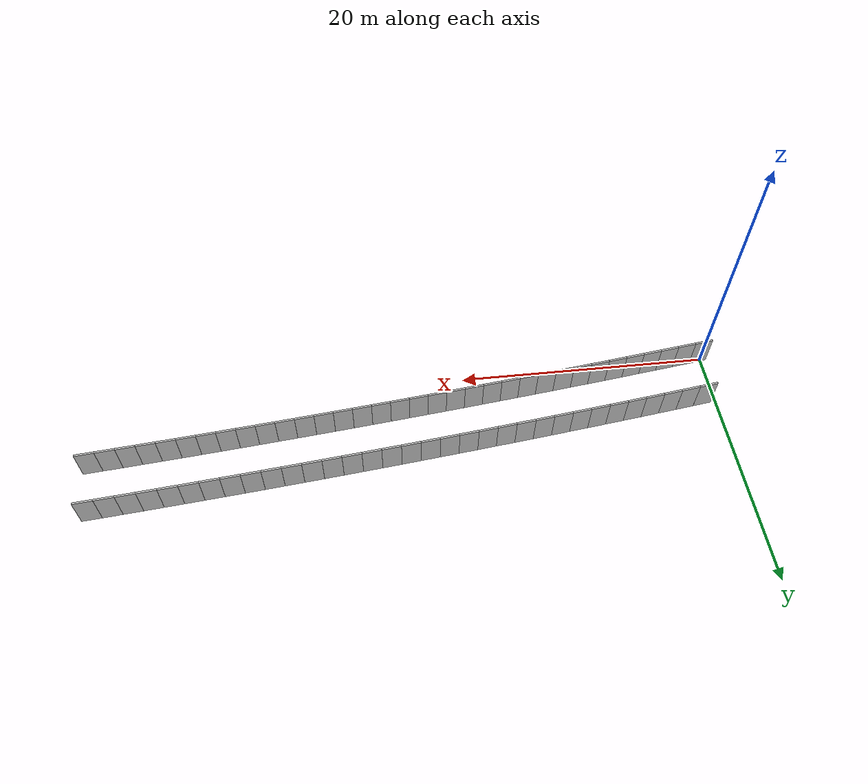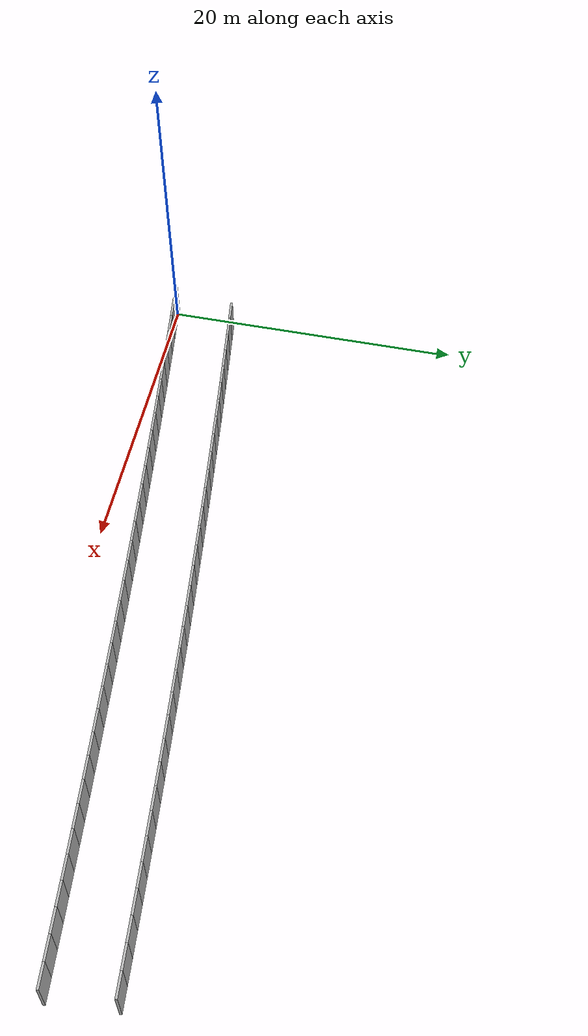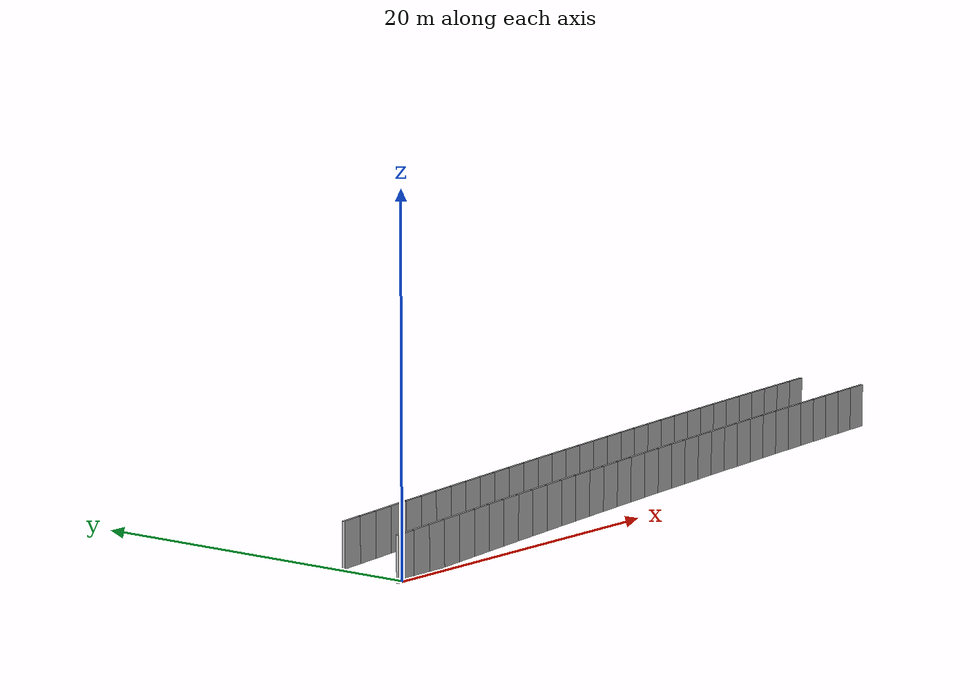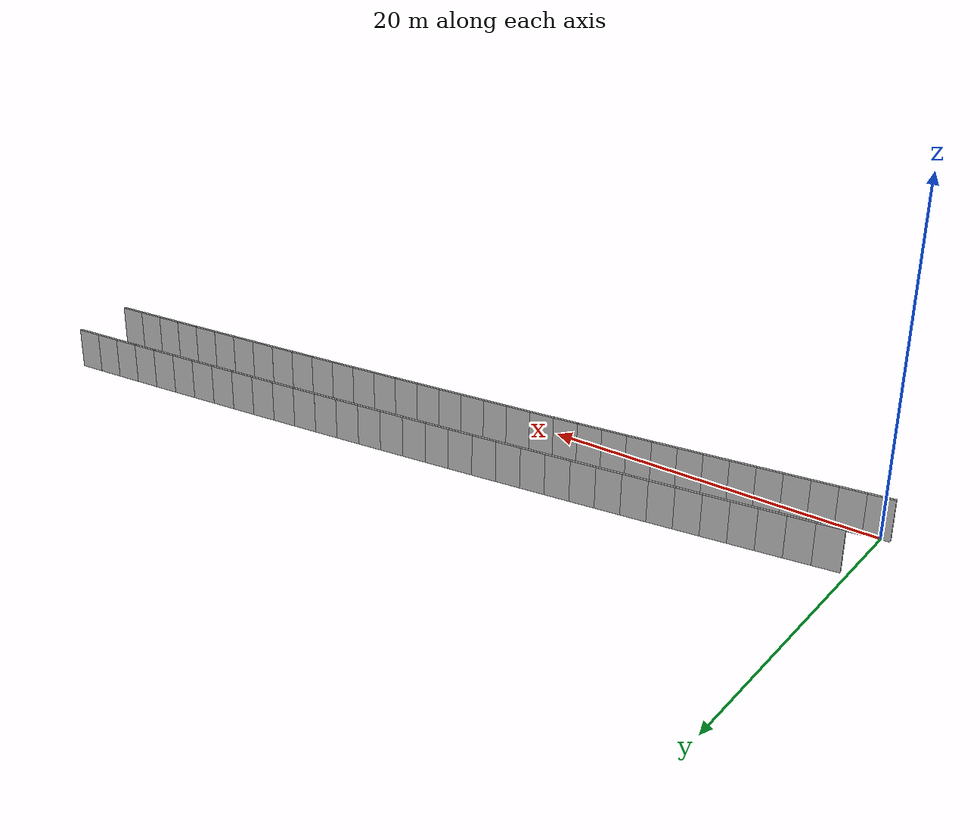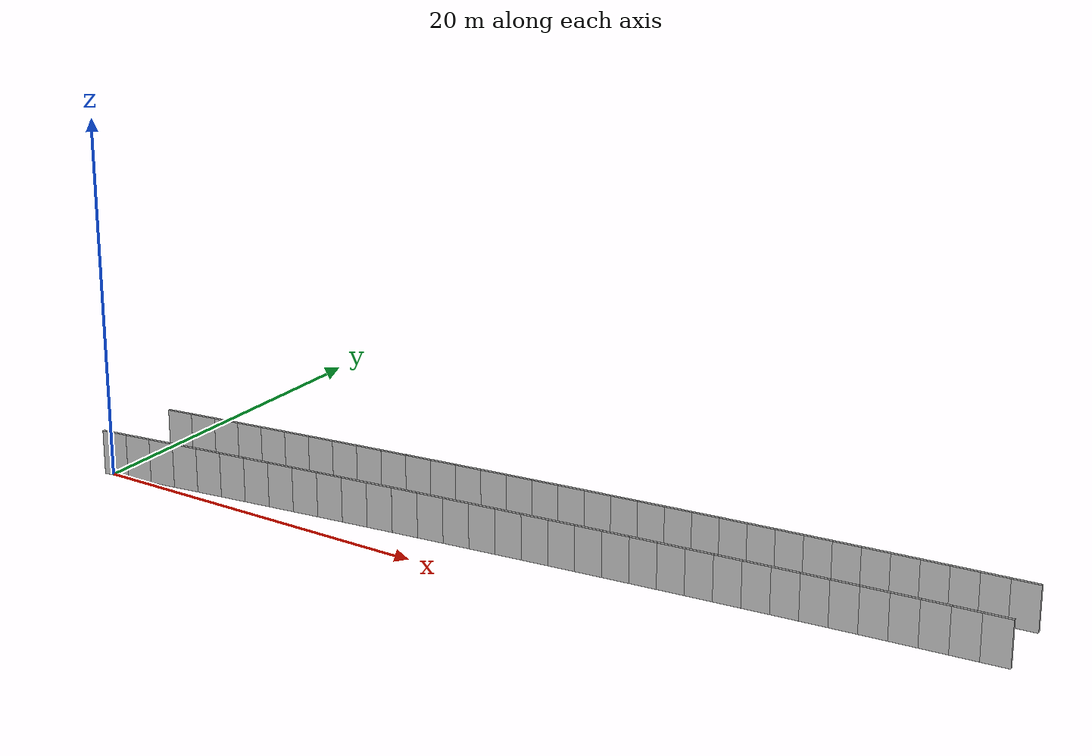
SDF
<?xml version="1.0" ?>
<sdf version="1.6">
  <model name="sps_2147">
    <pose frame="">0 0 0 0 -0 0</pose>
    <static>1</static>
    <self_collide>0</self_collide>
    <allow_auto_disable>0</allow_auto_disable>
    <link name="Wall2919">
      <kinematic>0</kinematic>
      <gravity>1</gravity>
      <self_collide>0</self_collide>
      <collision name="collision">
        <geometry>
          <box>
            <size>1.49658 0.15 2.5</size>
          </box>
        </geometry>
        <pose frame="">0 0 0 0 -0 0</pose>
      </collision>
      <visual name="visual">
        <geometry>
          <box>
            <size>1.49658 0.15 2.5</size>
          </box>
        </geometry>
        <pose frame="">0 0 0 0 -0 0</pose>
        <cast_shadows>1</cast_shadows>
        <transparency>0.0</transparency>
      </visual>
      <pose frame="">49.3093 5.65028 1.25 0 0 -3.05355</pose>
    </link>
    <link name="Wall2920">
      <kinematic>0</kinematic>
      <gravity>1</gravity>
      <self_collide>0</self_collide>
      <collision name="collision">
        <geometry>
          <box>
            <size>1.49641 0.15 2.5</size>
          </box>
        </geometry>
        <pose frame="">0 0 0 0 -0 0</pose>
      </collision>
      <visual name="visual">
        <geometry>
          <box>
            <size>1.49641 0.15 2.5</size>
          </box>
        </geometry>
        <pose frame="">0 0 0 0 -0 0</pose>
        <cast_shadows>1</cast_shadows>
        <transparency>0.0</transparency>
      </visual>
      <pose frame="">47.8187 5.51759 1.25 0 0 -3.05207</pose>
    </link>
    <link name="Wall2921">
      <kinematic>0</kinematic>
      <gravity>1</gravity>
      <self_collide>0</self_collide>
      <collision name="collision">
        <geometry>
          <box>
            <size>1.49665 0.15 2.5</size>
          </box>
        </geometry>
        <pose frame="">0 0 0 0 -0 0</pose>
      </collision>
      <visual name="visual">
        <geometry>
          <box>
            <size>1.49665 0.15 2.5</size>
          </box>
        </geometry>
        <pose frame="">0 0 0 0 -0 0</pose>
        <cast_shadows>1</cast_shadows>
        <transparency>0.0</transparency>
      </visual>
      <pose frame="">46.3282 5.38249 1.25 0 0 -3.05032</pose>
    </link>
    <link name="Wall2922">
      <kinematic>0</kinematic>
      <gravity>1</gravity>
      <self_collide>0</self_collide>
      <collision name="collision">
        <geometry>
          <box>
            <size>1.49644 0.15 2.5</size>
          </box>
        </geometry>
        <pose frame="">0 0 0 0 -0 0</pose>
      </collision>
      <visual name="visual">
        <geometry>
          <box>
            <size>1.49644 0.15 2.5</size>
          </box>
        </geometry>
        <pose frame="">0 0 0 0 -0 0</pose>
        <cast_shadows>1</cast_shadows>
        <transparency>0.0</transparency>
      </visual>
      <pose frame="">44.838 5.24489 1.25 0 0 -3.04871</pose>
    </link>
    <link name="Wall2923">
      <kinematic>0</kinematic>
      <gravity>1</gravity>
      <self_collide>0</self_collide>
      <collision name="collision">
        <geometry>
          <box>
            <size>1.49646 0.15 2.5</size>
          </box>
        </geometry>
        <pose frame="">0 0 0 0 -0 0</pose>
      </collision>
      <visual name="visual">
        <geometry>
          <box>
            <size>1.49646 0.15 2.5</size>
          </box>
        </geometry>
        <pose frame="">0 0 0 0 -0 0</pose>
        <cast_shadows>1</cast_shadows>
        <transparency>0.0</transparency>
      </visual>
      <pose frame="">43.3481 5.10499 1.25 0 0 -3.04724</pose>
    </link>
    <link name="Wall2924">
      <kinematic>0</kinematic>
      <gravity>1</gravity>
      <self_collide>0</self_collide>
      <collision name="collision">
        <geometry>
          <box>
            <size>1.49647 0.15 2.5</size>
          </box>
        </geometry>
        <pose frame="">0 0 0 0 -0 0</pose>
      </collision>
      <visual name="visual">
        <geometry>
          <box>
            <size>1.49647 0.15 2.5</size>
          </box>
        </geometry>
        <pose frame="">0 0 0 0 -0 0</pose>
        <cast_shadows>1</cast_shadows>
        <transparency>0.0</transparency>
      </visual>
      <pose frame="">41.8585 4.96269 1.25 0 0 -3.04548</pose>
    </link>
    <link name="Wall2925">
      <kinematic>0</kinematic>
      <gravity>1</gravity>
      <self_collide>0</self_collide>
      <collision name="collision">
        <geometry>
          <box>
            <size>1.49656 0.15 2.5</size>
          </box>
        </geometry>
        <pose frame="">0 0 0 0 -0 0</pose>
      </collision>
      <visual name="visual">
        <geometry>
          <box>
            <size>1.49656 0.15 2.5</size>
          </box>
        </geometry>
        <pose frame="">0 0 0 0 -0 0</pose>
        <cast_shadows>1</cast_shadows>
        <transparency>0.0</transparency>
      </visual>
      <pose frame="">40.3689 4.81798 1.25 0 0 -3.04401</pose>
    </link>
    <link name="Wall2926">
      <kinematic>0</kinematic>
      <gravity>1</gravity>
      <self_collide>0</self_collide>
      <collision name="collision">
        <geometry>
          <box>
            <size>1.49653 0.15 2.5</size>
          </box>
        </geometry>
        <pose frame="">0 0 0 0 -0 0</pose>
      </collision>
      <visual name="visual">
        <geometry>
          <box>
            <size>1.49653 0.15 2.5</size>
          </box>
        </geometry>
        <pose frame="">0 0 0 0 -0 0</pose>
        <cast_shadows>1</cast_shadows>
        <transparency>0.0</transparency>
      </visual>
      <pose frame="">38.8796 4.6711 1.25 0 0 -3.04257</pose>
    </link>
    <link name="Wall2927">
      <kinematic>0</kinematic>
      <gravity>1</gravity>
      <self_collide>0</self_collide>
      <collision name="collision">
        <geometry>
          <box>
            <size>1.49635 0.15 2.5</size>
          </box>
        </geometry>
        <pose frame="">0 0 0 0 -0 0</pose>
      </collision>
      <visual name="visual">
        <geometry>
          <box>
            <size>1.49635 0.15 2.5</size>
          </box>
        </geometry>
        <pose frame="">0 0 0 0 -0 0</pose>
        <cast_shadows>1</cast_shadows>
        <transparency>0.0</transparency>
      </visual>
      <pose frame="">37.3906 4.5219 1.25 0 0 -3.04088</pose>
    </link>
    <link name="Wall2928">
      <kinematic>0</kinematic>
      <gravity>1</gravity>
      <self_collide>0</self_collide>
      <collision name="collision">
        <geometry>
          <box>
            <size>1.49665 0.15 2.5</size>
          </box>
        </geometry>
        <pose frame="">0 0 0 0 -0 0</pose>
      </collision>
      <visual name="visual">
        <geometry>
          <box>
            <size>1.49665 0.15 2.5</size>
          </box>
        </geometry>
        <pose frame="">0 0 0 0 -0 0</pose>
        <cast_shadows>1</cast_shadows>
        <transparency>0.0</transparency>
      </visual>
      <pose frame="">35.9018 4.37028 1.25 0 0 -3.03934</pose>
    </link>
    <link name="Wall2929">
      <kinematic>0</kinematic>
      <gravity>1</gravity>
      <self_collide>0</self_collide>
      <collision name="collision">
        <geometry>
          <box>
            <size>1.49647 0.15 2.5</size>
          </box>
        </geometry>
        <pose frame="">0 0 0 0 -0 0</pose>
      </collision>
      <visual name="visual">
        <geometry>
          <box>
            <size>1.49647 0.15 2.5</size>
          </box>
        </geometry>
        <pose frame="">0 0 0 0 -0 0</pose>
        <cast_shadows>1</cast_shadows>
        <transparency>0.0</transparency>
      </visual>
      <pose frame="">34.4132 4.21629 1.25 0 0 -3.03769</pose>
    </link>
    <link name="Wall2930">
      <kinematic>0</kinematic>
      <gravity>1</gravity>
      <self_collide>0</self_collide>
      <collision name="collision">
        <geometry>
          <box>
            <size>1.49648 0.15 2.5</size>
          </box>
        </geometry>
        <pose frame="">0 0 0 0 -0 0</pose>
      </collision>
      <visual name="visual">
        <geometry>
          <box>
            <size>1.49648 0.15 2.5</size>
          </box>
        </geometry>
        <pose frame="">0 0 0 0 -0 0</pose>
        <cast_shadows>1</cast_shadows>
        <transparency>0.0</transparency>
      </visual>
      <pose frame="">32.9249 4.05989 1.25 0 0 -3.03609</pose>
    </link>
    <link name="Wall2931">
      <kinematic>0</kinematic>
      <gravity>1</gravity>
      <self_collide>0</self_collide>
      <collision name="collision">
        <geometry>
          <box>
            <size>1.49637 0.15 2.5</size>
          </box>
        </geometry>
        <pose frame="">0 0 0 0 -0 0</pose>
      </collision>
      <visual name="visual">
        <geometry>
          <box>
            <size>1.49637 0.15 2.5</size>
          </box>
        </geometry>
        <pose frame="">0 0 0 0 -0 0</pose>
        <cast_shadows>1</cast_shadows>
        <transparency>0.0</transparency>
      </visual>
      <pose frame="">31.437 3.90111 1.25 0 0 -3.03448</pose>
    </link>
    <link name="Wall2932">
      <kinematic>0</kinematic>
      <gravity>1</gravity>
      <self_collide>0</self_collide>
      <collision name="collision">
        <geometry>
          <box>
            <size>1.49661 0.15 2.5</size>
          </box>
        </geometry>
        <pose frame="">0 0 0 0 -0 0</pose>
      </collision>
      <visual name="visual">
        <geometry>
          <box>
            <size>1.49661 0.15 2.5</size>
          </box>
        </geometry>
        <pose frame="">0 0 0 0 -0 0</pose>
        <cast_shadows>1</cast_shadows>
        <transparency>0.0</transparency>
      </visual>
      <pose frame="">29.9492 3.74 1.25 0 0 -3.03298</pose>
    </link>
    <link name="Wall2933">
      <kinematic>0</kinematic>
      <gravity>1</gravity>
      <self_collide>0</self_collide>
      <collision name="collision">
        <geometry>
          <box>
            <size>1.49651 0.15 2.5</size>
          </box>
        </geometry>
        <pose frame="">0 0 0 0 -0 0</pose>
      </collision>
      <visual name="visual">
        <geometry>
          <box>
            <size>1.49651 0.15 2.5</size>
          </box>
        </geometry>
        <pose frame="">0 0 0 0 -0 0</pose>
        <cast_shadows>1</cast_shadows>
        <transparency>0.0</transparency>
      </visual>
      <pose frame="">28.4616 3.57658 1.25 0 0 -3.03137</pose>
    </link>
    <link name="Wall2934">
      <kinematic>0</kinematic>
      <gravity>1</gravity>
      <self_collide>0</self_collide>
      <collision name="collision">
        <geometry>
          <box>
            <size>1.49635 0.15 2.5</size>
          </box>
        </geometry>
        <pose frame="">0 0 0 0 -0 0</pose>
      </collision>
      <visual name="visual">
        <geometry>
          <box>
            <size>1.49635 0.15 2.5</size>
          </box>
        </geometry>
        <pose frame="">0 0 0 0 -0 0</pose>
        <cast_shadows>1</cast_shadows>
        <transparency>0.0</transparency>
      </visual>
      <pose frame="">26.9744 3.41078 1.25 0 0 -3.02976</pose>
    </link>
    <link name="Wall2935">
      <kinematic>0</kinematic>
      <gravity>1</gravity>
      <self_collide>0</self_collide>
      <collision name="collision">
        <geometry>
          <box>
            <size>1.49664 0.15 2.5</size>
          </box>
        </geometry>
        <pose frame="">0 0 0 0 -0 0</pose>
      </collision>
      <visual name="visual">
        <geometry>
          <box>
            <size>1.49664 0.15 2.5</size>
          </box>
        </geometry>
        <pose frame="">0 0 0 0 -0 0</pose>
        <cast_shadows>1</cast_shadows>
        <transparency>0.0</transparency>
      </visual>
      <pose frame="">25.4874 3.24248 1.25 0 0 -3.02802</pose>
    </link>
    <link name="Wall2936">
      <kinematic>0</kinematic>
      <gravity>1</gravity>
      <self_collide>0</self_collide>
      <collision name="collision">
        <geometry>
          <box>
            <size>1.49644 0.15 2.5</size>
          </box>
        </geometry>
        <pose frame="">0 0 0 0 -0 0</pose>
      </collision>
      <visual name="visual">
        <geometry>
          <box>
            <size>1.49644 0.15 2.5</size>
          </box>
        </geometry>
        <pose frame="">0 0 0 0 -0 0</pose>
        <cast_shadows>1</cast_shadows>
        <transparency>0.0</transparency>
      </visual>
      <pose frame="">24.0006 3.07188 1.25 0 0 -3.02669</pose>
    </link>
    <link name="Wall2937">
      <kinematic>0</kinematic>
      <gravity>1</gravity>
      <self_collide>0</self_collide>
      <collision name="collision">
        <geometry>
          <box>
            <size>1.49662 0.15 2.5</size>
          </box>
        </geometry>
        <pose frame="">0 0 0 0 -0 0</pose>
      </collision>
      <visual name="visual">
        <geometry>
          <box>
            <size>1.49662 0.15 2.5</size>
          </box>
        </geometry>
        <pose frame="">0 0 0 0 -0 0</pose>
        <cast_shadows>1</cast_shadows>
        <transparency>0.0</transparency>
      </visual>
      <pose frame="">22.5141 2.899 1.25 0 0 -3.02494</pose>
    </link>
    <link name="Wall2938">
      <kinematic>0</kinematic>
      <gravity>1</gravity>
      <self_collide>0</self_collide>
      <collision name="collision">
        <geometry>
          <box>
            <size>1.49639 0.15 2.5</size>
          </box>
        </geometry>
        <pose frame="">0 0 0 0 -0 0</pose>
      </collision>
      <visual name="visual">
        <geometry>
          <box>
            <size>1.49639 0.15 2.5</size>
          </box>
        </geometry>
        <pose frame="">0 0 0 0 -0 0</pose>
        <cast_shadows>1</cast_shadows>
        <transparency>0.0</transparency>
      </visual>
      <pose frame="">21.0279 2.72371 1.25 0 0 -3.02344</pose>
    </link>
    <link name="Wall2939">
      <kinematic>0</kinematic>
      <gravity>1</gravity>
      <self_collide>0</self_collide>
      <collision name="collision">
        <geometry>
          <box>
            <size>1.49656 0.15 2.5</size>
          </box>
        </geometry>
        <pose frame="">0 0 0 0 -0 0</pose>
      </collision>
      <visual name="visual">
        <geometry>
          <box>
            <size>1.49656 0.15 2.5</size>
          </box>
        </geometry>
        <pose frame="">0 0 0 0 -0 0</pose>
        <cast_shadows>1</cast_shadows>
        <transparency>0.0</transparency>
      </visual>
      <pose frame="">19.542 2.5461 1.25 0 0 -3.02181</pose>
    </link>
    <link name="Wall2940">
      <kinematic>0</kinematic>
      <gravity>1</gravity>
      <self_collide>0</self_collide>
      <collision name="collision">
        <geometry>
          <box>
            <size>1.49658 0.15 2.5</size>
          </box>
        </geometry>
        <pose frame="">0 0 0 0 -0 0</pose>
      </collision>
      <visual name="visual">
        <geometry>
          <box>
            <size>1.49658 0.15 2.5</size>
          </box>
        </geometry>
        <pose frame="">0 0 0 0 -0 0</pose>
        <cast_shadows>1</cast_shadows>
        <transparency>0.0</transparency>
      </visual>
      <pose frame="">18.0562 2.36619 1.25 0 0 -3.02037</pose>
    </link>
    <link name="Wall2941">
      <kinematic>0</kinematic>
      <gravity>1</gravity>
      <self_collide>0</self_collide>
      <collision name="collision">
        <geometry>
          <box>
            <size>1.49647 0.15 2.5</size>
          </box>
        </geometry>
        <pose frame="">0 0 0 0 -0 0</pose>
      </collision>
      <visual name="visual">
        <geometry>
          <box>
            <size>1.49647 0.15 2.5</size>
          </box>
        </geometry>
        <pose frame="">0 0 0 0 -0 0</pose>
        <cast_shadows>1</cast_shadows>
        <transparency>0.0</transparency>
      </visual>
      <pose frame="">16.5709 2.18391 1.25 0 0 -3.0186</pose>
    </link>
    <link name="Wall2942">
      <kinematic>0</kinematic>
      <gravity>1</gravity>
      <self_collide>0</self_collide>
      <collision name="collision">
        <geometry>
          <box>
            <size>1.49636 0.15 2.5</size>
          </box>
        </geometry>
        <pose frame="">0 0 0 0 -0 0</pose>
      </collision>
      <visual name="visual">
        <geometry>
          <box>
            <size>1.49636 0.15 2.5</size>
          </box>
        </geometry>
        <pose frame="">0 0 0 0 -0 0</pose>
        <cast_shadows>1</cast_shadows>
        <transparency>0.0</transparency>
      </visual>
      <pose frame="">15.0859 1.99931 1.25 0 0 -3.01723</pose>
    </link>
    <link name="Wall2943">
      <kinematic>0</kinematic>
      <gravity>1</gravity>
      <self_collide>0</self_collide>
      <collision name="collision">
        <geometry>
          <box>
            <size>1.4965 0.15 2.5</size>
          </box>
        </geometry>
        <pose frame="">0 0 0 0 -0 0</pose>
      </collision>
      <visual name="visual">
        <geometry>
          <box>
            <size>1.4965 0.15 2.5</size>
          </box>
        </geometry>
        <pose frame="">0 0 0 0 -0 0</pose>
        <cast_shadows>1</cast_shadows>
        <transparency>0.0</transparency>
      </visual>
      <pose frame="">13.6012 1.81239 1.25 0 0 -3.01548</pose>
    </link>
    <link name="Wall2944">
      <kinematic>0</kinematic>
      <gravity>1</gravity>
      <self_collide>0</self_collide>
      <collision name="collision">
        <geometry>
          <box>
            <size>1.49659 0.15 2.5</size>
          </box>
        </geometry>
        <pose frame="">0 0 0 0 -0 0</pose>
      </collision>
      <visual name="visual">
        <geometry>
          <box>
            <size>1.49659 0.15 2.5</size>
          </box>
        </geometry>
        <pose frame="">0 0 0 0 -0 0</pose>
        <cast_shadows>1</cast_shadows>
        <transparency>0.0</transparency>
      </visual>
      <pose frame="">12.1167 1.62288 1.25 0 0 -3.01376</pose>
    </link>
    <link name="Wall2945">
      <kinematic>0</kinematic>
      <gravity>1</gravity>
      <self_collide>0</self_collide>
      <collision name="collision">
        <geometry>
          <box>
            <size>1.49648 0.15 2.5</size>
          </box>
        </geometry>
        <pose frame="">0 0 0 0 -0 0</pose>
      </collision>
      <visual name="visual">
        <geometry>
          <box>
            <size>1.49648 0.15 2.5</size>
          </box>
        </geometry>
        <pose frame="">0 0 0 0 -0 0</pose>
        <cast_shadows>1</cast_shadows>
        <transparency>0.0</transparency>
      </visual>
      <pose frame="">10.6325 1.43108 1.25 0 0 -3.01239</pose>
    </link>
    <link name="Wall2946">
      <kinematic>0</kinematic>
      <gravity>1</gravity>
      <self_collide>0</self_collide>
      <collision name="collision">
        <geometry>
          <box>
            <size>1.49661 0.15 2.5</size>
          </box>
        </geometry>
        <pose frame="">0 0 0 0 -0 0</pose>
      </collision>
      <visual name="visual">
        <geometry>
          <box>
            <size>1.49661 0.15 2.5</size>
          </box>
        </geometry>
        <pose frame="">0 0 0 0 -0 0</pose>
        <cast_shadows>1</cast_shadows>
        <transparency>0.0</transparency>
      </visual>
      <pose frame="">9.14855 1.23707 1.25 0 0 -3.0108</pose>
    </link>
    <link name="Wall2947">
      <kinematic>0</kinematic>
      <gravity>1</gravity>
      <self_collide>0</self_collide>
      <collision name="collision">
        <geometry>
          <box>
            <size>1.4965 0.15 2.5</size>
          </box>
        </geometry>
        <pose frame="">0 0 0 0 -0 0</pose>
      </collision>
      <visual name="visual">
        <geometry>
          <box>
            <size>1.4965 0.15 2.5</size>
          </box>
        </geometry>
        <pose frame="">0 0 0 0 -0 0</pose>
        <cast_shadows>1</cast_shadows>
        <transparency>0.0</transparency>
      </visual>
      <pose frame="">7.66494 1.04069 1.25 0 0 -3.00918</pose>
    </link>
    <link name="Wall2948">
      <kinematic>0</kinematic>
      <gravity>1</gravity>
      <self_collide>0</self_collide>
      <collision name="collision">
        <geometry>
          <box>
            <size>1.4964 0.15 2.5</size>
          </box>
        </geometry>
        <pose frame="">0 0 0 0 -0 0</pose>
      </collision>
      <visual name="visual">
        <geometry>
          <box>
            <size>1.4964 0.15 2.5</size>
          </box>
        </geometry>
        <pose frame="">0 0 0 0 -0 0</pose>
        <cast_shadows>1</cast_shadows>
        <transparency>0.0</transparency>
      </visual>
      <pose frame="">6.18175 0.841903 1.25 0 0 -3.00753</pose>
    </link>
    <link name="Wall2949">
      <kinematic>0</kinematic>
      <gravity>1</gravity>
      <self_collide>0</self_collide>
      <collision name="collision">
        <geometry>
          <box>
            <size>1.49651 0.15 2.5</size>
          </box>
        </geometry>
        <pose frame="">0 0 0 0 -0 0</pose>
      </collision>
      <visual name="visual">
        <geometry>
          <box>
            <size>1.49651 0.15 2.5</size>
          </box>
        </geometry>
        <pose frame="">0 0 0 0 -0 0</pose>
        <cast_shadows>1</cast_shadows>
        <transparency>0.0</transparency>
      </visual>
      <pose frame="">4.69887 0.640792 1.25 0 0 -3.00606</pose>
    </link>
    <link name="Wall2950">
      <kinematic>0</kinematic>
      <gravity>1</gravity>
      <self_collide>0</self_collide>
      <collision name="collision">
        <geometry>
          <box>
            <size>1.49647 0.15 2.5</size>
          </box>
        </geometry>
        <pose frame="">0 0 0 0 -0 0</pose>
      </collision>
      <visual name="visual">
        <geometry>
          <box>
            <size>1.49647 0.15 2.5</size>
          </box>
        </geometry>
        <pose frame="">0 0 0 0 -0 0</pose>
        <cast_shadows>1</cast_shadows>
        <transparency>0.0</transparency>
      </visual>
      <pose frame="">3.21627 0.437392 1.25 0 0 -3.00445</pose>
    </link>
    <link name="Wall2951">
      <kinematic>0</kinematic>
      <gravity>1</gravity>
      <self_collide>0</self_collide>
      <collision name="collision">
        <geometry>
          <box>
            <size>1.49657 0.15 2.5</size>
          </box>
        </geometry>
        <pose frame="">0 0 0 0 -0 0</pose>
      </collision>
      <visual name="visual">
        <geometry>
          <box>
            <size>1.49657 0.15 2.5</size>
          </box>
        </geometry>
        <pose frame="">0 0 0 0 -0 0</pose>
        <cast_shadows>1</cast_shadows>
        <transparency>0.0</transparency>
      </visual>
      <pose frame="">1.73397 0.231582 1.25 0 0 -3.00281</pose>
    </link>
    <link name="Wall2952">
      <kinematic>0</kinematic>
      <gravity>1</gravity>
      <self_collide>0</self_collide>
      <collision name="collision">
        <geometry>
          <box>
            <size>1.49653 0.15 2.5</size>
          </box>
        </geometry>
        <pose frame="">0 0 0 0 -0 0</pose>
      </collision>
      <visual name="visual">
        <geometry>
          <box>
            <size>1.49653 0.15 2.5</size>
          </box>
        </geometry>
        <pose frame="">0 0 0 0 -0 0</pose>
        <cast_shadows>1</cast_shadows>
        <transparency>0.0</transparency>
      </visual>
      <pose frame="">0.251975 0.0233907 1.25 0 0 -3.00124</pose>
    </link>
    <link name="Wall5530">
      <kinematic>0</kinematic>
      <gravity>1</gravity>
      <self_collide>0</self_collide>
      <collision name="collision">
        <geometry>
          <box>
            <size>1.50308 0.15 2.5</size>
          </box>
        </geometry>
        <pose frame="">0 0 0 0 -0 0</pose>
      </collision>
      <visual name="visual">
        <geometry>
          <box>
            <size>1.50308 0.15 2.5</size>
          </box>
        </geometry>
        <pose frame="">0 0 0 0 -0 0</pose>
        <cast_shadows>1</cast_shadows>
        <transparency>0.0</transparency>
      </visual>
      <pose frame="">48.9415 9.77357 1.25 0 0 -3.05352</pose>
    </link>
    <link name="Wall5531">
      <kinematic>0</kinematic>
      <gravity>1</gravity>
      <self_collide>0</self_collide>
      <collision name="collision">
        <geometry>
          <box>
            <size>1.50323 0.15 2.5</size>
          </box>
        </geometry>
        <pose frame="">0 0 0 0 -0 0</pose>
      </collision>
      <visual name="visual">
        <geometry>
          <box>
            <size>1.50323 0.15 2.5</size>
          </box>
        </geometry>
        <pose frame="">0 0 0 0 -0 0</pose>
        <cast_shadows>1</cast_shadows>
        <transparency>0.0</transparency>
      </visual>
      <pose frame="">47.4442 9.64018 1.25 0 0 -3.05194</pose>
    </link>
    <link name="Wall5532">
      <kinematic>0</kinematic>
      <gravity>1</gravity>
      <self_collide>0</self_collide>
      <collision name="collision">
        <geometry>
          <box>
            <size>1.50302 0.15 2.5</size>
          </box>
        </geometry>
        <pose frame="">0 0 0 0 -0 0</pose>
      </collision>
      <visual name="visual">
        <geometry>
          <box>
            <size>1.50302 0.15 2.5</size>
          </box>
        </geometry>
        <pose frame="">0 0 0 0 -0 0</pose>
        <cast_shadows>1</cast_shadows>
        <transparency>0.0</transparency>
      </visual>
      <pose frame="">45.9473 9.50438 1.25 0 0 -3.0503</pose>
    </link>
    <link name="Wall5533">
      <kinematic>0</kinematic>
      <gravity>1</gravity>
      <self_collide>0</self_collide>
      <collision name="collision">
        <geometry>
          <box>
            <size>1.50312 0.15 2.5</size>
          </box>
        </geometry>
        <pose frame="">0 0 0 0 -0 0</pose>
      </collision>
      <visual name="visual">
        <geometry>
          <box>
            <size>1.50312 0.15 2.5</size>
          </box>
        </geometry>
        <pose frame="">0 0 0 0 -0 0</pose>
        <cast_shadows>1</cast_shadows>
        <transparency>0.0</transparency>
      </visual>
      <pose frame="">44.4506 9.36619 1.25 0 0 -3.04876</pose>
    </link>
    <link name="Wall5534">
      <kinematic>0</kinematic>
      <gravity>1</gravity>
      <self_collide>0</self_collide>
      <collision name="collision">
        <geometry>
          <box>
            <size>1.50308 0.15 2.5</size>
          </box>
        </geometry>
        <pose frame="">0 0 0 0 -0 0</pose>
      </collision>
      <visual name="visual">
        <geometry>
          <box>
            <size>1.50308 0.15 2.5</size>
          </box>
        </geometry>
        <pose frame="">0 0 0 0 -0 0</pose>
        <cast_shadows>1</cast_shadows>
        <transparency>0.0</transparency>
      </visual>
      <pose frame="">42.954 9.22572 1.25 0 0 -3.04725</pose>
    </link>
    <link name="Wall5535">
      <kinematic>0</kinematic>
      <gravity>1</gravity>
      <self_collide>0</self_collide>
      <collision name="collision">
        <geometry>
          <box>
            <size>1.50289 0.15 2.5</size>
          </box>
        </geometry>
        <pose frame="">0 0 0 0 -0 0</pose>
      </collision>
      <visual name="visual">
        <geometry>
          <box>
            <size>1.50289 0.15 2.5</size>
          </box>
        </geometry>
        <pose frame="">0 0 0 0 -0 0</pose>
        <cast_shadows>1</cast_shadows>
        <transparency>0.0</transparency>
      </visual>
      <pose frame="">41.4578 9.0829 1.25 0 0 -3.0456</pose>
    </link>
    <link name="Wall5536">
      <kinematic>0</kinematic>
      <gravity>1</gravity>
      <self_collide>0</self_collide>
      <collision name="collision">
        <geometry>
          <box>
            <size>1.5032 0.15 2.5</size>
          </box>
        </geometry>
        <pose frame="">0 0 0 0 -0 0</pose>
      </collision>
      <visual name="visual">
        <geometry>
          <box>
            <size>1.5032 0.15 2.5</size>
          </box>
        </geometry>
        <pose frame="">0 0 0 0 -0 0</pose>
        <cast_shadows>1</cast_shadows>
        <transparency>0.0</transparency>
      </visual>
      <pose frame="">39.9618 8.93758 1.25 0 0 -3.04391</pose>
    </link>
    <link name="Wall5537">
      <kinematic>0</kinematic>
      <gravity>1</gravity>
      <self_collide>0</self_collide>
      <collision name="collision">
        <geometry>
          <box>
            <size>1.50315 0.15 2.5</size>
          </box>
        </geometry>
        <pose frame="">0 0 0 0 -0 0</pose>
      </collision>
      <visual name="visual">
        <geometry>
          <box>
            <size>1.50315 0.15 2.5</size>
          </box>
        </geometry>
        <pose frame="">0 0 0 0 -0 0</pose>
        <cast_shadows>1</cast_shadows>
        <transparency>0.0</transparency>
      </visual>
      <pose frame="">38.4659 8.78999 1.25 0 0 -3.0426</pose>
    </link>
    <link name="Wall5538">
      <kinematic>0</kinematic>
      <gravity>1</gravity>
      <self_collide>0</self_collide>
      <collision name="collision">
        <geometry>
          <box>
            <size>1.50323 0.15 2.5</size>
          </box>
        </geometry>
        <pose frame="">0 0 0 0 -0 0</pose>
      </collision>
      <visual name="visual">
        <geometry>
          <box>
            <size>1.50323 0.15 2.5</size>
          </box>
        </geometry>
        <pose frame="">0 0 0 0 -0 0</pose>
        <cast_shadows>1</cast_shadows>
        <transparency>0.0</transparency>
      </visual>
      <pose frame="">36.9702 8.64009 1.25 0 0 -3.04081</pose>
    </link>
    <link name="Wall5539">
      <kinematic>0</kinematic>
      <gravity>1</gravity>
      <self_collide>0</self_collide>
      <collision name="collision">
        <geometry>
          <box>
            <size>1.50284 0.15 2.5</size>
          </box>
        </geometry>
        <pose frame="">0 0 0 0 -0 0</pose>
      </collision>
      <visual name="visual">
        <geometry>
          <box>
            <size>1.50284 0.15 2.5</size>
          </box>
        </geometry>
        <pose frame="">0 0 0 0 -0 0</pose>
        <cast_shadows>1</cast_shadows>
        <transparency>0.0</transparency>
      </visual>
      <pose frame="">35.4749 8.48778 1.25 0 0 -3.03935</pose>
    </link>
    <link name="Wall5540">
      <kinematic>0</kinematic>
      <gravity>1</gravity>
      <self_collide>0</self_collide>
      <collision name="collision">
        <geometry>
          <box>
            <size>1.50311 0.15 2.5</size>
          </box>
        </geometry>
        <pose frame="">0 0 0 0 -0 0</pose>
      </collision>
      <visual name="visual">
        <geometry>
          <box>
            <size>1.50311 0.15 2.5</size>
          </box>
        </geometry>
        <pose frame="">0 0 0 0 -0 0</pose>
        <cast_shadows>1</cast_shadows>
        <transparency>0.0</transparency>
      </visual>
      <pose frame="">33.9799 8.33308 1.25 0 0 -3.03762</pose>
    </link>
    <link name="Wall5541">
      <kinematic>0</kinematic>
      <gravity>1</gravity>
      <self_collide>0</self_collide>
      <collision name="collision">
        <geometry>
          <box>
            <size>1.50318 0.15 2.5</size>
          </box>
        </geometry>
        <pose frame="">0 0 0 0 -0 0</pose>
      </collision>
      <visual name="visual">
        <geometry>
          <box>
            <size>1.50318 0.15 2.5</size>
          </box>
        </geometry>
        <pose frame="">0 0 0 0 -0 0</pose>
        <cast_shadows>1</cast_shadows>
        <transparency>0.0</transparency>
      </visual>
      <pose frame="">32.485 8.17589 1.25 0 0 -3.03603</pose>
    </link>
    <link name="Wall5542">
      <kinematic>0</kinematic>
      <gravity>1</gravity>
      <self_collide>0</self_collide>
      <collision name="collision">
        <geometry>
          <box>
            <size>1.50299 0.15 2.5</size>
          </box>
        </geometry>
        <pose frame="">0 0 0 0 -0 0</pose>
      </collision>
      <visual name="visual">
        <geometry>
          <box>
            <size>1.50299 0.15 2.5</size>
          </box>
        </geometry>
        <pose frame="">0 0 0 0 -0 0</pose>
        <cast_shadows>1</cast_shadows>
        <transparency>0.0</transparency>
      </visual>
      <pose frame="">30.9904 8.0164 1.25 0 0 -3.03455</pose>
    </link>
    <link name="Wall5543">
      <kinematic>0</kinematic>
      <gravity>1</gravity>
      <self_collide>0</self_collide>
      <collision name="collision">
        <geometry>
          <box>
            <size>1.50307 0.15 2.5</size>
          </box>
        </geometry>
        <pose frame="">0 0 0 0 -0 0</pose>
      </collision>
      <visual name="visual">
        <geometry>
          <box>
            <size>1.50307 0.15 2.5</size>
          </box>
        </geometry>
        <pose frame="">0 0 0 0 -0 0</pose>
        <cast_shadows>1</cast_shadows>
        <transparency>0.0</transparency>
      </visual>
      <pose frame="">29.4961 7.8546 1.25 0 0 -3.03292</pose>
    </link>
    <link name="Wall5544">
      <kinematic>0</kinematic>
      <gravity>1</gravity>
      <self_collide>0</self_collide>
      <collision name="collision">
        <geometry>
          <box>
            <size>1.50315 0.15 2.5</size>
          </box>
        </geometry>
        <pose frame="">0 0 0 0 -0 0</pose>
      </collision>
      <visual name="visual">
        <geometry>
          <box>
            <size>1.50315 0.15 2.5</size>
          </box>
        </geometry>
        <pose frame="">0 0 0 0 -0 0</pose>
        <cast_shadows>1</cast_shadows>
        <transparency>0.0</transparency>
      </visual>
      <pose frame="">28.002 7.69038 1.25 0 0 -3.03133</pose>
    </link>
    <link name="Wall5545">
      <kinematic>0</kinematic>
      <gravity>1</gravity>
      <self_collide>0</self_collide>
      <collision name="collision">
        <geometry>
          <box>
            <size>1.50297 0.15 2.5</size>
          </box>
        </geometry>
        <pose frame="">0 0 0 0 -0 0</pose>
      </collision>
      <visual name="visual">
        <geometry>
          <box>
            <size>1.50297 0.15 2.5</size>
          </box>
        </geometry>
        <pose frame="">0 0 0 0 -0 0</pose>
        <cast_shadows>1</cast_shadows>
        <transparency>0.0</transparency>
      </visual>
      <pose frame="">26.5082 7.52388 1.25 0 0 -3.02985</pose>
    </link>
    <link name="Wall5546">
      <kinematic>0</kinematic>
      <gravity>1</gravity>
      <self_collide>0</self_collide>
      <collision name="collision">
        <geometry>
          <box>
            <size>1.50325 0.15 2.5</size>
          </box>
        </geometry>
        <pose frame="">0 0 0 0 -0 0</pose>
      </collision>
      <visual name="visual">
        <geometry>
          <box>
            <size>1.50325 0.15 2.5</size>
          </box>
        </geometry>
        <pose frame="">0 0 0 0 -0 0</pose>
        <cast_shadows>1</cast_shadows>
        <transparency>0.0</transparency>
      </visual>
      <pose frame="">25.0146 7.35499 1.25 0 0 -3.02815</pose>
    </link>
    <link name="Wall5547">
      <kinematic>0</kinematic>
      <gravity>1</gravity>
      <self_collide>0</self_collide>
      <collision name="collision">
        <geometry>
          <box>
            <size>1.5029 0.15 2.5</size>
          </box>
        </geometry>
        <pose frame="">0 0 0 0 -0 0</pose>
      </collision>
      <visual name="visual">
        <geometry>
          <box>
            <size>1.5029 0.15 2.5</size>
          </box>
        </geometry>
        <pose frame="">0 0 0 0 -0 0</pose>
        <cast_shadows>1</cast_shadows>
        <transparency>0.0</transparency>
      </visual>
      <pose frame="">23.5214 7.1837 1.25 0 0 -3.02661</pose>
    </link>
    <link name="Wall5548">
      <kinematic>0</kinematic>
      <gravity>1</gravity>
      <self_collide>0</self_collide>
      <collision name="collision">
        <geometry>
          <box>
            <size>1.50318 0.15 2.5</size>
          </box>
        </geometry>
        <pose frame="">0 0 0 0 -0 0</pose>
      </collision>
      <visual name="visual">
        <geometry>
          <box>
            <size>1.50318 0.15 2.5</size>
          </box>
        </geometry>
        <pose frame="">0 0 0 0 -0 0</pose>
        <cast_shadows>1</cast_shadows>
        <transparency>0.0</transparency>
      </visual>
      <pose frame="">22.0284 7.01009 1.25 0 0 -3.02504</pose>
    </link>
    <link name="Wall5549">
      <kinematic>0</kinematic>
      <gravity>1</gravity>
      <self_collide>0</self_collide>
      <collision name="collision">
        <geometry>
          <box>
            <size>1.50309 0.15 2.5</size>
          </box>
        </geometry>
        <pose frame="">0 0 0 0 -0 0</pose>
      </collision>
      <visual name="visual">
        <geometry>
          <box>
            <size>1.50309 0.15 2.5</size>
          </box>
        </geometry>
        <pose frame="">0 0 0 0 -0 0</pose>
        <cast_shadows>1</cast_shadows>
        <transparency>0.0</transparency>
      </visual>
      <pose frame="">20.5356 6.83409 1.25 0 0 -3.02344</pose>
    </link>
    <link name="Wall5550">
      <kinematic>0</kinematic>
      <gravity>1</gravity>
      <self_collide>0</self_collide>
      <collision name="collision">
        <geometry>
          <box>
            <size>1.5032 0.15 2.5</size>
          </box>
        </geometry>
        <pose frame="">0 0 0 0 -0 0</pose>
      </collision>
      <visual name="visual">
        <geometry>
          <box>
            <size>1.5032 0.15 2.5</size>
          </box>
        </geometry>
        <pose frame="">0 0 0 0 -0 0</pose>
        <cast_shadows>1</cast_shadows>
        <transparency>0.0</transparency>
      </visual>
      <pose frame="">19.0431 6.65568 1.25 0 0 -3.02181</pose>
    </link>
    <link name="Wall5551">
      <kinematic>0</kinematic>
      <gravity>1</gravity>
      <self_collide>0</self_collide>
      <collision name="collision">
        <geometry>
          <box>
            <size>1.50306 0.15 2.5</size>
          </box>
        </geometry>
        <pose frame="">0 0 0 0 -0 0</pose>
      </collision>
      <visual name="visual">
        <geometry>
          <box>
            <size>1.50306 0.15 2.5</size>
          </box>
        </geometry>
        <pose frame="">0 0 0 0 -0 0</pose>
        <cast_shadows>1</cast_shadows>
        <transparency>0.0</transparency>
      </visual>
      <pose frame="">17.5508 6.47487 1.25 0 0 -3.0202</pose>
    </link>
    <link name="Wall5552">
      <kinematic>0</kinematic>
      <gravity>1</gravity>
      <self_collide>0</self_collide>
      <collision name="collision">
        <geometry>
          <box>
            <size>1.50293 0.15 2.5</size>
          </box>
        </geometry>
        <pose frame="">0 0 0 0 -0 0</pose>
      </collision>
      <visual name="visual">
        <geometry>
          <box>
            <size>1.50293 0.15 2.5</size>
          </box>
        </geometry>
        <pose frame="">0 0 0 0 -0 0</pose>
        <cast_shadows>1</cast_shadows>
        <transparency>0.0</transparency>
      </visual>
      <pose frame="">16.059 6.29167 1.25 0 0 -3.0186</pose>
    </link>
    <link name="Wall5553">
      <kinematic>0</kinematic>
      <gravity>1</gravity>
      <self_collide>0</self_collide>
      <collision name="collision">
        <geometry>
          <box>
            <size>1.503 0.15 2.5</size>
          </box>
        </geometry>
        <pose frame="">0 0 0 0 -0 0</pose>
      </collision>
      <visual name="visual">
        <geometry>
          <box>
            <size>1.503 0.15 2.5</size>
          </box>
        </geometry>
        <pose frame="">0 0 0 0 -0 0</pose>
        <cast_shadows>1</cast_shadows>
        <transparency>0.0</transparency>
      </visual>
      <pose frame="">14.5676 6.10628 1.25 0 0 -3.01725</pose>
    </link>
    <link name="Wall5554">
      <kinematic>0</kinematic>
      <gravity>1</gravity>
      <self_collide>0</self_collide>
      <collision name="collision">
        <geometry>
          <box>
            <size>1.50314 0.15 2.5</size>
          </box>
        </geometry>
        <pose frame="">0 0 0 0 -0 0</pose>
      </collision>
      <visual name="visual">
        <geometry>
          <box>
            <size>1.50314 0.15 2.5</size>
          </box>
        </geometry>
        <pose frame="">0 0 0 0 -0 0</pose>
        <cast_shadows>1</cast_shadows>
        <transparency>0.0</transparency>
      </visual>
      <pose frame="">13.0763 5.91859 1.25 0 0 -3.01555</pose>
    </link>
    <link name="Wall5555">
      <kinematic>0</kinematic>
      <gravity>1</gravity>
      <self_collide>0</self_collide>
      <collision name="collision">
        <geometry>
          <box>
            <size>1.50302 0.15 2.5</size>
          </box>
        </geometry>
        <pose frame="">0 0 0 0 -0 0</pose>
      </collision>
      <visual name="visual">
        <geometry>
          <box>
            <size>1.50302 0.15 2.5</size>
          </box>
        </geometry>
        <pose frame="">0 0 0 0 -0 0</pose>
        <cast_shadows>1</cast_shadows>
        <transparency>0.0</transparency>
      </visual>
      <pose frame="">11.5853 5.72841 1.25 0 0 -3.0139</pose>
    </link>
    <link name="Wall5556">
      <kinematic>0</kinematic>
      <gravity>1</gravity>
      <self_collide>0</self_collide>
      <collision name="collision">
        <geometry>
          <box>
            <size>1.50296 0.15 2.5</size>
          </box>
        </geometry>
        <pose frame="">0 0 0 0 -0 0</pose>
      </collision>
      <visual name="visual">
        <geometry>
          <box>
            <size>1.50296 0.15 2.5</size>
          </box>
        </geometry>
        <pose frame="">0 0 0 0 -0 0</pose>
        <cast_shadows>1</cast_shadows>
        <transparency>0.0</transparency>
      </visual>
      <pose frame="">10.0947 5.53581 1.25 0 0 -3.0123</pose>
    </link>
    <link name="Wall5557">
      <kinematic>0</kinematic>
      <gravity>1</gravity>
      <self_collide>0</self_collide>
      <collision name="collision">
        <geometry>
          <box>
            <size>1.50328 0.15 2.5</size>
          </box>
        </geometry>
        <pose frame="">0 0 0 0 -0 0</pose>
      </collision>
      <visual name="visual">
        <geometry>
          <box>
            <size>1.50328 0.15 2.5</size>
          </box>
        </geometry>
        <pose frame="">0 0 0 0 -0 0</pose>
        <cast_shadows>1</cast_shadows>
        <transparency>0.0</transparency>
      </visual>
      <pose frame="">8.60424 5.3408 1.25 0 0 -3.01069</pose>
    </link>
    <link name="Wall5558">
      <kinematic>0</kinematic>
      <gravity>1</gravity>
      <self_collide>0</self_collide>
      <collision name="collision">
        <geometry>
          <box>
            <size>1.50317 0.15 2.5</size>
          </box>
        </geometry>
        <pose frame="">0 0 0 0 -0 0</pose>
      </collision>
      <visual name="visual">
        <geometry>
          <box>
            <size>1.50317 0.15 2.5</size>
          </box>
        </geometry>
        <pose frame="">0 0 0 0 -0 0</pose>
        <cast_shadows>1</cast_shadows>
        <transparency>0.0</transparency>
      </visual>
      <pose frame="">7.11404 5.14339 1.25 0 0 -3.00908</pose>
    </link>
    <link name="Wall5559">
      <kinematic>0</kinematic>
      <gravity>1</gravity>
      <self_collide>0</self_collide>
      <collision name="collision">
        <geometry>
          <box>
            <size>1.50304 0.15 2.5</size>
          </box>
        </geometry>
        <pose frame="">0 0 0 0 -0 0</pose>
      </collision>
      <visual name="visual">
        <geometry>
          <box>
            <size>1.50304 0.15 2.5</size>
          </box>
        </geometry>
        <pose frame="">0 0 0 0 -0 0</pose>
        <cast_shadows>1</cast_shadows>
        <transparency>0.0</transparency>
      </visual>
      <pose frame="">5.62426 4.94368 1.25 0 0 -3.00759</pose>
    </link>
    <link name="Wall5560">
      <kinematic>0</kinematic>
      <gravity>1</gravity>
      <self_collide>0</self_collide>
      <collision name="collision">
        <geometry>
          <box>
            <size>1.50299 0.15 2.5</size>
          </box>
        </geometry>
        <pose frame="">0 0 0 0 -0 0</pose>
      </collision>
      <visual name="visual">
        <geometry>
          <box>
            <size>1.50299 0.15 2.5</size>
          </box>
        </geometry>
        <pose frame="">0 0 0 0 -0 0</pose>
        <cast_shadows>1</cast_shadows>
        <transparency>0.0</transparency>
      </visual>
      <pose frame="">4.13488 4.74168 1.25 0 0 -3.00599</pose>
    </link>
    <link name="Wall5561">
      <kinematic>0</kinematic>
      <gravity>1</gravity>
      <self_collide>0</self_collide>
      <collision name="collision">
        <geometry>
          <box>
            <size>1.50311 0.15 2.5</size>
          </box>
        </geometry>
        <pose frame="">0 0 0 0 -0 0</pose>
      </collision>
      <visual name="visual">
        <geometry>
          <box>
            <size>1.50311 0.15 2.5</size>
          </box>
        </geometry>
        <pose frame="">0 0 0 0 -0 0</pose>
        <cast_shadows>1</cast_shadows>
        <transparency>0.0</transparency>
      </visual>
      <pose frame="">2.64577 4.5374 1.25 0 0 -3.00453</pose>
    </link>
    <link name="Wall5562">
      <kinematic>0</kinematic>
      <gravity>1</gravity>
      <self_collide>0</self_collide>
      <collision name="collision">
        <geometry>
          <box>
            <size>1.50329 0.15 2.5</size>
          </box>
        </geometry>
        <pose frame="">0 0 0 0 -0 0</pose>
      </collision>
      <visual name="visual">
        <geometry>
          <box>
            <size>1.50329 0.15 2.5</size>
          </box>
        </geometry>
        <pose frame="">0 0 0 0 -0 0</pose>
        <cast_shadows>1</cast_shadows>
        <transparency>0.0</transparency>
      </visual>
      <pose frame="">1.15685 4.3307 1.25 0 0 -3.00278</pose>
    </link>
  </model>
</sdf>
